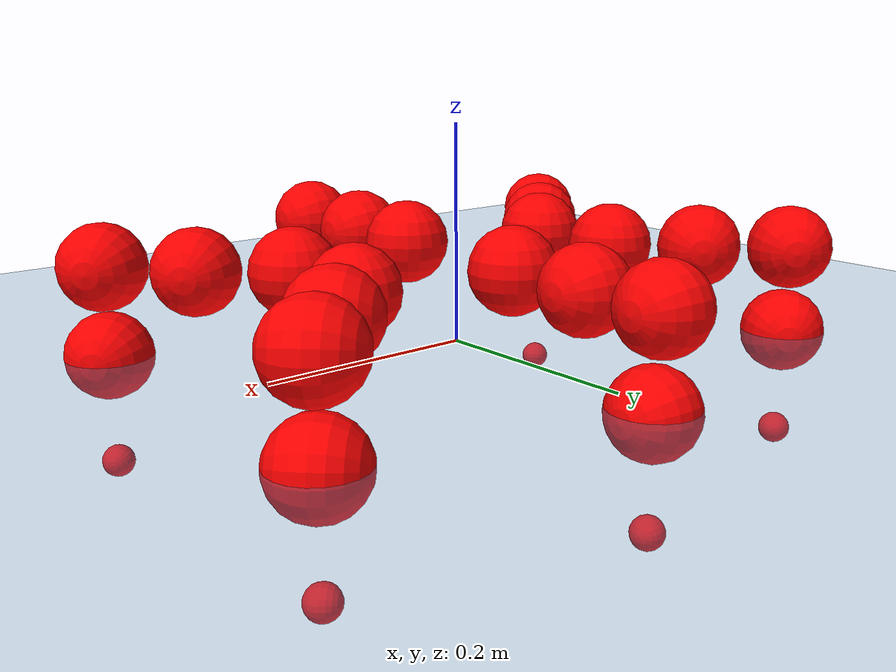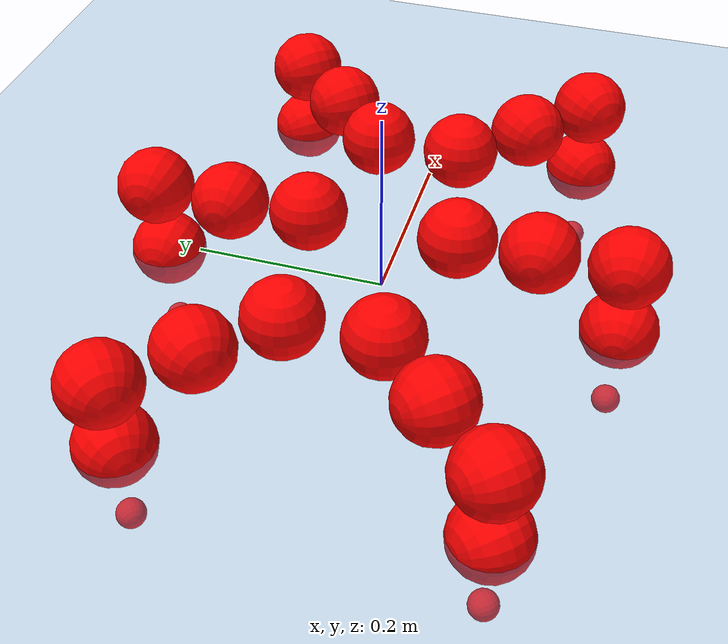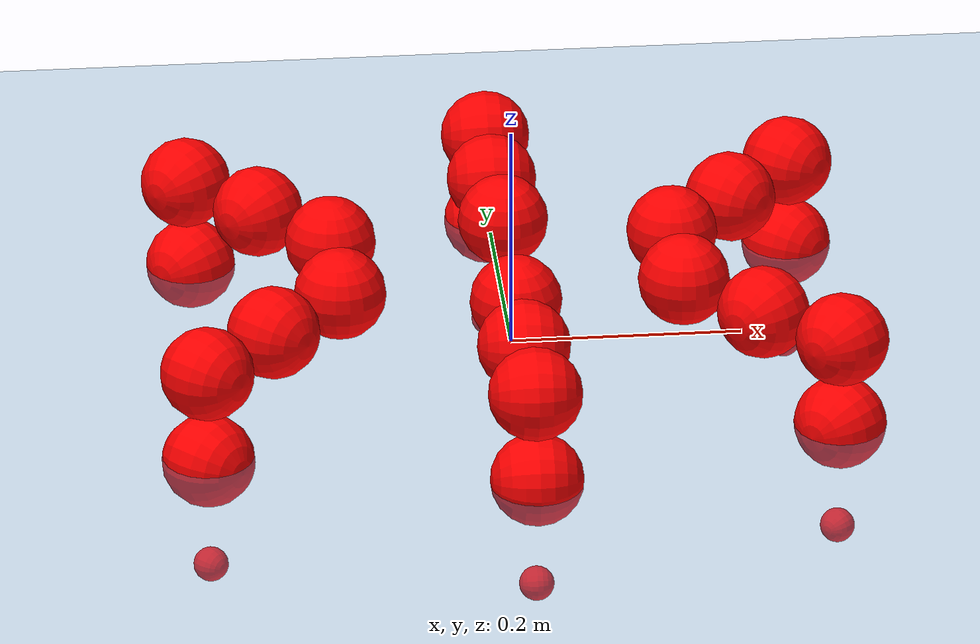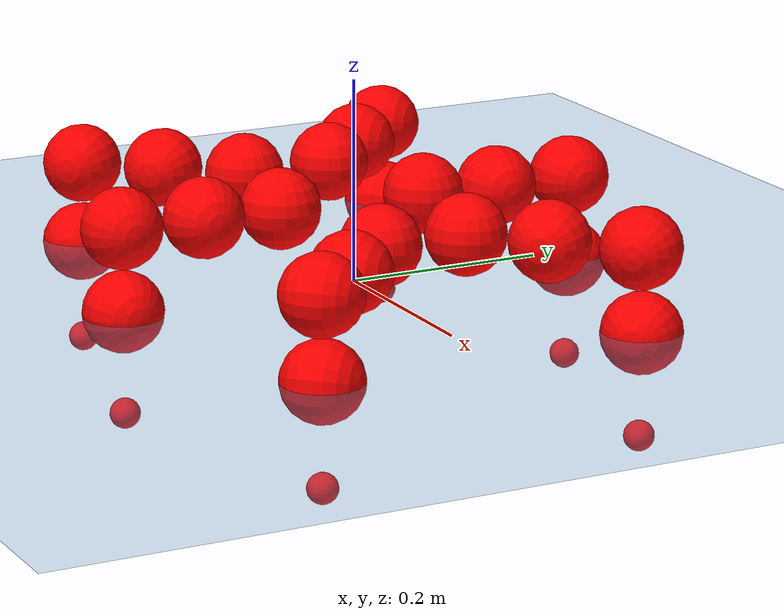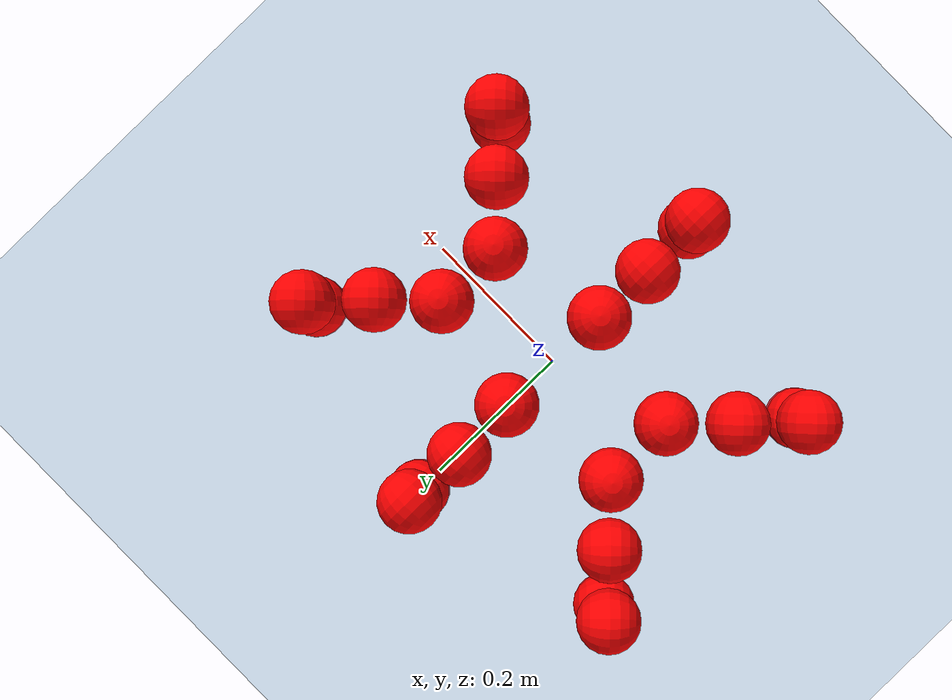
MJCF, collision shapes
<mujoco model="Golem">
  <compiler angle="radian" assetdir="assets" balanceinertia="true" inertiafromgeom="false"/>

  <option timestep="0.005" density="1.2" viscosity="2e-05"/>

  <size nkey="1"/>

  <visual>
    <quality shadowsize="8192"/>
    <map shadowclip="0.5"/>
  </visual>

  <default>
    <default class="/">
      <joint armature="0.01" damping="0.01" frictionloss="0.01"/>
      <geom contype="0" conaffinity="0" group="1" solref="-1000 -80"/>
      <site size="0.01 0.005 0.005" group="5"/>
      <general forcelimited="true" biastype="affine" gainprm="25" biasprm="0 -25 -0.5"/>
      <default class="visual">
        <geom type="mesh" group="2"/>
      </default>
      <default class="collision">
        <geom group="3"/>
      </default>
      <default class="foot">
        <geom size="0.01 0 0" condim="6" group="4" priority="1" solimp="0.015 1 0.01"/>
      </default>
      <default class="reward_collision_sphere">
        <geom group="5" rgba="1 0 0 1"/>
      </default>
    </default>
  </default>

  <asset>
    <texture type="skybox" colorspace="auto" name="//unnamed_texture_0" builtin="gradient" rgb1="0.95 0.95 0.95" rgb2="0.95 0.95 0.95" width="100" height="600"/>
    <texture type="2d" colorspace="auto" name="texplane" builtin="checker" rgb1="0.345 0.575 0.748" rgb2="0.345 0.575 0.748" markrgb="1 1 1" width="512" height="512"/>
    <material name="MatPlane" class="/" texture="texplane" texuniform="true" texrepeat="2 2" specular="0.9"/>
    <mesh name="body" class="/" file="body.stl" scale="0.001 0.001 0.001"/>
    <mesh name="coxa" class="/" file="coxa.stl" scale="0.001 0.001 0.001"/>
    <mesh name="femur" class="/" file="femur.stl" scale="0.001 0.001 0.001"/>
    <mesh name="tibia" class="/" file="tibia.stl" scale="0.001 0.001 0.001"/>
    <mesh name="tarsus" class="/" file="tarsus.stl" scale="0.001 0.001 0.001"/>
  </asset>

  <worldbody>
    <geom name="floor" class="/" size="100 100 0.125" type="plane" group="0" material="MatPlane"/>
    <light name="toplight_shadow" class="/" pos="0 0 5" dir="0.0990148 0.0990148 -0.990148" type="directional" ambient="0.04 0.04 0.04" diffuse="0.55 0.55 0.55" specular="0.12 0.12 0.12"/>
    <light name="toplight_fill" class="/" pos="0 0 5" dir="0.0990148 0.0990148 -0.990148" type="directional" castshadow="false" ambient="0.04 0.04 0.04" diffuse="0.3 0.3 0.3" specular="0.08 0.08 0.08"/>
    <body name="trunk" pos="-0.00198953 -0.000306055 -0.000894657" quat="1 -1.30247e-06 -1.47584e-06 4.74259e-06">
      <inertial pos="-0.000525128 -0.00102951 -0.00185834" quat="0.999908 -0.00332836 0.000855092 0.0131217" mass="3.50471" diaginertia="0.00725423 0.00323224 0.0274621"/>
      <joint name="//unnamed_joint_0" type="free"/>
      <geom name="//unnamed_geom_1" class="/" pos="0 0 0.0781621" quat="1 0 0 0" type="mesh" rgba="0.9 0.9 0.9 1" mesh="body"/>
      <site name="imu" class="/" pos="0.125519 0.0061624 0.108145" size="0.00984192"/>
      <camera name="track" class="/" pos="0 -1.59276 0" quat="0.707107 0.707107 0 0" mode="trackcom"/>
      <camera name="ego_camera" class="/" pos="0.121539 0 0.122128" quat="-0.5 -0.5 0.5 0.5"/>
      <body name="coxa_RR" pos="-0.16749 -0.0653161 0.0797797" quat="0.382481 0.000369481 -0.000164479 -0.923963">
        <inertial pos="0.00247041 0.0028508 0.00300732" quat="0.999987 -0.00238936 0.00284994 -0.00349189" mass="0.190714" diaginertia="0.00714183 0.00332857 0.0265368"/>
        <joint name="coxa_joint_RR" class="/" pos="0 0 0" axis="-0.00360996 0.000638431 -0.999993" range="-3.13108 3.15741" armature="0.00949702" damping="0.00944477" frictionloss="0.00968698"/>
        <geom name="//unnamed_geom_2" class="/" type="mesh" rgba="0.2 0.2 0.2 1" mesh="coxa"/>
        <geom name="//unnamed_geom_3" class="reward_collision_sphere" size="0.0393677" pos="-0.0280475 0 0"/>
        <body name="femur_RR" pos="0.0582906 0.0010846 -0.00115875" quat="0.500806 -0.499437 0.500626 0.499129">
          <inertial pos="0.000471228 0.0026444 0.000921214" quat="0.999994 -0.000812874 -0.0019729 0.00255668" mass="0.184586" diaginertia="0.00700799 0.00312976 0.0267593"/>
          <joint name="femur_joint_RR" class="/" pos="0 0 0" axis="-0.000876387 -0.00273024 -0.999996" stiffness="0.00561428" range="-3.08603 3.08895" armature="0.00982091" damping="0.0283276" frictionloss="0.0112117"/>
          <geom name="//unnamed_geom_4" class="/" type="mesh" rgba="0.9 0.9 0.9 1" mesh="femur"/>
          <geom name="//unnamed_geom_5" class="reward_collision_sphere" size="0.0393677"/>
          <body name="tibia_RR" pos="0.00174131 -0.0861314 0.00311167" quat="0.000463551 0.999999 -0.00126599 0.00049951">
            <inertial pos="-0.0019355 7.0874e-05 -0.00090915" quat="0.999902 0.000776824 -0.00342172 -0.0135389" mass="0.186717" diaginertia="0.00732674 0.00319881 0.0275229"/>
            <joint name="tibia_joint_RR" class="/" pos="0 0 0" axis="-0.00389511 -0.00602563 0.999974" stiffness="0.00448266" range="-3.19419 3.15823" armature="0.00979894" damping="0.00692493" frictionloss="0.00939507"/>
            <geom name="//unnamed_geom_6" class="/" type="mesh" rgba="0.2 0.2 0.2 1" mesh="tibia"/>
            <geom name="//unnamed_geom_7" class="reward_collision_sphere" size="0.0393677"/>
            <body name="tarsus_RR" pos="0.0819278 0.00170075 -0.000680254" quat="0.999999 -0.0011122 -0.000306409 0.000419461">
              <inertial pos="0.0557679 0.00080555 -0.00271068" quat="0.501246 0.500315 0.498975 0.49946" mass="0.191131" diaginertia="0.00706708 0.00324284 0.0269412"/>
              <joint name="tarsus_joint_RR" class="/" pos="0 0 0" axis="-0.0111342 -0.0120341 0.999866" range="-3.14271 3.13462" armature="0.0099754" damping="0.0429311" frictionloss="0.00907399"/>
              <geom name="//unnamed_geom_8" class="/" type="mesh" rgba="0.9 0.9 0.9 1" mesh="tarsus"/>
              <geom name="foot_1" class="foot" size="0.00930233" pos="0.104711 0 0" quat="0 -0.707107 0 0.707107"/>
              <geom name="//unnamed_geom_10" class="reward_collision_sphere" size="0.0393677"/>
              <geom name="//unnamed_geom_11" class="reward_collision_sphere" size="0.0147629" pos="0.100503 0 0"/>
              <site name="foot_1" class="foot" pos="0.104711 0 0" quat="0 -0.707107 0 0.707107" size="0.00984192"/>
            </body>
          </body>
        </body>
      </body>
      <body name="coxa_RM" pos="-0.000551134 -0.104709 0.0827147" quat="0.707255 -0.000792532 -0.000775725 -0.706957">
        <inertial pos="-0.000601744 -0.000781707 -0.00130243" quat="0.999989 -0.00433316 -0.000365824 -0.00148261" mass="0.192501" diaginertia="0.00692266 0.00333056 0.0269508"/>
        <joint name="coxa_joint_RM" class="/" pos="0 0 0" axis="-0.000835932 -0.00346848 -0.999994" range="-3.10656 3.13593" armature="0.0109181" damping="0.0140639" frictionloss="0.0102552"/>
        <geom name="//unnamed_geom_12" class="/" type="mesh" rgba="0.2 0.2 0.2 1" mesh="coxa"/>
        <geom name="//unnamed_geom_13" class="reward_collision_sphere" size="0.0393677" pos="-0.0280475 0 0"/>
        <body name="femur_RM" pos="0.0521305 -0.000665515 0.000622952" quat="0.499685 -0.499481 0.501217 0.499614">
          <inertial pos="-0.00015482 -0.00286462 0.00265678" quat="0.999997 -0.000826064 -0.00184915 -0.00110637" mass="0.199829" diaginertia="0.0069771 0.00320336 0.0269138"/>
          <joint name="femur_joint_RM" class="/" pos="0 0 0" axis="0.000111393 -0.000187991 -1" range="-3.12602 3.0968" armature="0.00936463" damping="0.0220905" frictionloss="0.00979624"/>
          <geom name="//unnamed_geom_14" class="/" type="mesh" rgba="0.9 0.9 0.9 1" mesh="femur"/>
          <geom name="//unnamed_geom_15" class="reward_collision_sphere" size="0.0393677"/>
          <body name="tibia_RM" pos="-0.000659125 -0.0847921 0.00181613" quat="-0.000225973 1 0.000158801 0.000345875">
            <inertial pos="-0.00219529 0.000225039 -0.00197833" quat="0.99996 0.00796707 -0.00188304 -0.00354202" mass="0.192499" diaginertia="0.00725376 0.00318727 0.0275114"/>
            <joint name="tibia_joint_RM" class="/" pos="0 0 0" axis="0.00842383 -0.00696337 0.99994" stiffness="0.00492949" range="-3.14411 3.15073" armature="0.00959918" damping="0.00127595" frictionloss="0.00884037"/>
            <geom name="//unnamed_geom_16" class="/" type="mesh" rgba="0.2 0.2 0.2 1" mesh="tibia"/>
            <geom name="//unnamed_geom_17" class="reward_collision_sphere" size="0.0393677"/>
            <body name="tarsus_RM" pos="0.0807926 0.000665422 -0.00152755" quat="1 0.000147126 -0.000205239 4.72701e-05">
              <inertial pos="0.0571696 -0.000195461 0.000489073" quat="0.501921 0.493751 0.509695 0.494466" mass="0.190126" diaginertia="0.00719764 0.00319457 0.0289489"/>
              <joint name="tarsus_joint_RM" class="/" pos="0 0 0" axis="-0.00621031 0.000164368 0.999981" stiffness="8.66084e-05" range="-3.18299 3.1231" armature="0.0084457" damping="0.00907673" frictionloss="0.0102341"/>
              <geom name="//unnamed_geom_18" class="/" type="mesh" rgba="0.9 0.9 0.9 1" mesh="tarsus"/>
              <geom name="foot_2" class="foot" size="0.0107343" pos="0.104711 0 0" quat="0 -0.707107 0 0.707107"/>
              <geom name="//unnamed_geom_20" class="reward_collision_sphere" size="0.0393677"/>
              <geom name="//unnamed_geom_21" class="reward_collision_sphere" size="0.0147629" pos="0.100503 0 0"/>
              <site name="foot_2" class="foot" pos="0.104711 0 0" quat="0 -0.707107 0 0.707107" size="0.00984192"/>
            </body>
          </body>
        </body>
      </body>
      <body name="coxa_RF" pos="0.16608 -0.0650157 0.0791136" quat="0.923911 0.00025139 0.000147496 -0.382607">
        <inertial pos="0.000424131 0.000180204 0.000176734" quat="0.999987 -0.0013144 0.00220481 0.0043511" mass="0.1935" diaginertia="0.00702092 0.00311807 0.026997"/>
        <joint name="coxa_joint_RF" class="/" pos="0 0 0" axis="0.0178864 0.00278737 -0.999836" stiffness="0.0135578" range="-3.08171 3.13574" armature="0.0083933" damping="0.0229904" frictionloss="0.00995327"/>
        <geom name="//unnamed_geom_22" class="/" type="mesh" rgba="0.2 0.2 0.2 1" mesh="coxa"/>
        <geom name="//unnamed_geom_23" class="reward_collision_sphere" size="0.0393677" pos="-0.0280475 0 0"/>
        <body name="femur_RF" pos="0.0579928 -0.00031656 -0.00164522" quat="0.500127 -0.500206 0.499916 0.49975">
          <inertial pos="-0.0007507 -0.00276492 -0.000380752" quat="0.999985 -6.94537e-05 0.00483765 0.00270709" mass="0.197129" diaginertia="0.00712294 0.00322117 0.0272029"/>
          <joint name="femur_joint_RF" class="/" pos="0 0 0" axis="-0.0034745 -0.000537992 -0.999994" range="-3.13548 3.08399" armature="0.00944721" damping="0.00659353" frictionloss="0.0107224"/>
          <geom name="//unnamed_geom_24" class="/" type="mesh" rgba="0.9 0.9 0.9 1" mesh="femur"/>
          <geom name="//unnamed_geom_25" class="reward_collision_sphere" size="0.0393677"/>
          <body name="tibia_RF" pos="-0.00274314 -0.0834219 0.000427116" quat="-0.00030301 0.999999 -0.00114258 -0.000479309">
            <inertial pos="0.00161252 -0.000216036 0.000841967" quat="0.999967 -0.000382048 0.00432699 0.00685874" mass="0.183707" diaginertia="0.00706596 0.00310435 0.0262826"/>
            <joint name="tibia_joint_RF" class="/" pos="0 0 0" axis="-0.000314782 -0.00219858 0.999998" range="-3.13324 3.14262" armature="0.0100161" damping="0" frictionloss="0.0111228"/>
            <geom name="//unnamed_geom_26" class="/" type="mesh" rgba="0.2 0.2 0.2 1" mesh="tibia"/>
            <geom name="//unnamed_geom_27" class="reward_collision_sphere" size="0.0393677"/>
            <body name="tarsus_RF" pos="0.0800112 -0.000434714 -0.000561646" quat="1 -5.32154e-05 0.000188253 -0.000238031">
              <inertial pos="0.0548701 -0.000239483 -0.000247224" quat="0.493768 0.507463 0.4944 0.504225" mass="0.185706" diaginertia="0.00689764 0.00313336 0.0260554"/>
              <joint name="tarsus_joint_RF" class="/" pos="0 0 0" axis="-0.00643165 0.0107872 0.999921" stiffness="0.00170557" range="-3.13212 3.15473" armature="0.00964537" damping="0.00745376" frictionloss="0.0110857"/>
              <geom name="//unnamed_geom_28" class="/" type="mesh" rgba="0.9 0.9 0.9 1" mesh="tarsus"/>
              <geom name="foot_3" class="foot" size="0.0101079" pos="0.104711 0 0" quat="0 -0.707107 0 0.707107"/>
              <geom name="//unnamed_geom_30" class="reward_collision_sphere" size="0.0393677"/>
              <geom name="//unnamed_geom_31" class="reward_collision_sphere" size="0.0147629" pos="0.100503 0 0"/>
              <site name="foot_3" class="foot" pos="0.104711 0 0" quat="0 -0.707107 0 0.707107" size="0.00984192"/>
            </body>
          </body>
        </body>
      </body>
      <body name="coxa_LR" pos="-0.169688 0.0689795 0.0798046" quat="0.382518 -0.00020144 0.000187078 0.923948">
        <inertial pos="0.000120173 0.000793713 0.00301354" quat="0.999989 0.00443894 0.00114983 -0.0012954" mass="0.18168" diaginertia="0.00696091 0.00318162 0.0270647"/>
        <joint name="coxa_joint_LR" class="/" pos="0 0 0" axis="0.00497266 0.00114651 -0.999987" range="-3.11274 3.14023" armature="0.00847492" damping="0.0191441" frictionloss="0.00946229"/>
        <geom name="//unnamed_geom_32" class="/" type="mesh" rgba="0.2 0.2 0.2 1" mesh="coxa"/>
        <geom name="//unnamed_geom_33" class="reward_collision_sphere" size="0.0393677" pos="-0.0280475 0 0"/>
        <body name="femur_LR" pos="0.0564405 -0.00092923 0.000321798" quat="0.50095 -0.499327 0.4992 0.500521">
          <inertial pos="-0.000483474 -0.000363651 0.00266529" quat="0.999903 0.00597215 -0.0118355 -0.00422077" mass="0.196678" diaginertia="0.00737857 0.00308927 0.0279849"/>
          <joint name="femur_joint_LR" class="/" pos="0 0 0" axis="-0.00331471 0.006931 0.99997" range="-3.15189 3.15304" armature="0.00977276" damping="0.00664796" frictionloss="0.00867925"/>
          <geom name="//unnamed_geom_34" class="/" type="mesh" rgba="0.9 0.9 0.9 1" mesh="femur"/>
          <geom name="//unnamed_geom_35" class="reward_collision_sphere" size="0.0393677"/>
          <body name="tibia_LR" pos="-0.000102711 -0.0849819 0.000145983" quat="-0.00072801 0.999999 0.000634183 0.000455223">
            <inertial pos="0.000757742 -0.00234938 -0.000199417" quat="0.999995 -0.00117794 -0.00265797 -0.00103737" mass="0.190932" diaginertia="0.00702073 0.00321882 0.0261786"/>
            <joint name="tibia_joint_LR" class="/" pos="0 0 0" axis="-5.83625e-05 0.0020736 -0.999998" range="-3.13439 3.17211" armature="0.00840387" damping="0.0137556" frictionloss="0.00852532"/>
            <geom name="//unnamed_geom_36" class="/" type="mesh" rgba="0.2 0.2 0.2 1" mesh="tibia"/>
            <geom name="//unnamed_geom_37" class="reward_collision_sphere" size="0.0393677"/>
            <body name="tarsus_LR" pos="0.0808821 -0.00152445 0.00232787" quat="1 0.000166031 0.000187872 -6.52509e-05">
              <inertial pos="0.0577758 0.000259792 0.00231653" quat="0.50242 0.502065 0.497363 0.498132" mass="0.185512" diaginertia="0.00696205 0.0033236 0.0274616"/>
              <joint name="tarsus_joint_LR" class="/" pos="0 0 0" axis="-0.00060609 -0.000673699 -1" stiffness="0.0138675" range="-3.15703 3.10681" armature="0.00919581" damping="0.0287686" frictionloss="0.0107043"/>
              <geom name="//unnamed_geom_38" class="/" type="mesh" rgba="0.9 0.9 0.9 1" mesh="tarsus"/>
              <geom name="foot_4" class="foot" size="0.0108162" pos="0.104711 0 0" quat="0.707107 0 -0.707107 0"/>
              <geom name="//unnamed_geom_40" class="reward_collision_sphere" size="0.0393677"/>
              <geom name="//unnamed_geom_41" class="reward_collision_sphere" size="0.0147629" pos="0.100503 0 0"/>
              <site name="foot_4" class="foot" pos="0.104711 0 0" quat="0.707107 0 -0.707107 0" size="0.00984192"/>
            </body>
          </body>
        </body>
      </body>
      <body name="coxa_LM" pos="0.00194468 0.103963 0.079989" quat="0.706135 -2.04622e-05 0.000613684 0.708077">
        <inertial pos="0.000463992 -0.000512766 0.00275749" quat="1 0.000503628 0.000101283 -0.000384805" mass="0.189777" diaginertia="0.00730667 0.00317707 0.0268341"/>
        <joint name="coxa_joint_LM" class="/" pos="0 0 0" axis="-0.00908822 0.00578753 -0.999942" range="-3.08931 3.08722" armature="0.0104407" damping="0.0178403" frictionloss="0.0111173"/>
        <geom name="//unnamed_geom_42" class="/" type="mesh" rgba="0.2 0.2 0.2 1" mesh="coxa"/>
        <geom name="//unnamed_geom_43" class="reward_collision_sphere" size="0.0393677" pos="-0.0280475 0 0"/>
        <body name="femur_LM" pos="0.0546655 0.00245125 -0.00235125" quat="0.500034 -0.50004 0.499957 0.499969">
          <inertial pos="-0.00222048 0.00243743 -0.0012762" quat="0.999965 0.00628221 0.00085868 -0.00551916" mass="0.195927" diaginertia="0.00748706 0.00319481 0.028553"/>
          <joint name="femur_joint_LM" class="/" pos="0 0 0" axis="0.00416052 0.0126957 0.999911" stiffness="0.00936931" range="-3.08401 3.14425" armature="0.0100759" damping="0" frictionloss="0.00954458"/>
          <geom name="//unnamed_geom_44" class="/" type="mesh" rgba="0.9 0.9 0.9 1" mesh="femur"/>
          <geom name="//unnamed_geom_45" class="reward_collision_sphere" size="0.0393677"/>
          <body name="tibia_LM" pos="-0.00106695 -0.0819402 -0.00173105" quat="-6.55302e-05 1 -0.000151046 0.000121816">
            <inertial pos="0.00266268 0.000875139 0.00288707" quat="0.999915 0.00454262 -0.00952398 -0.00769615" mass="0.192091" diaginertia="0.00700737 0.00314646 0.0261832"/>
            <joint name="tibia_joint_LM" class="/" pos="0 0 0" axis="-0.0113262 -0.00704214 -0.999911" range="-3.1922 3.17732" armature="0.00959557" damping="0.00162204" frictionloss="0.00860212"/>
            <geom name="//unnamed_geom_46" class="/" type="mesh" rgba="0.2 0.2 0.2 1" mesh="tibia"/>
            <geom name="//unnamed_geom_47" class="reward_collision_sphere" size="0.0393677"/>
            <body name="tarsus_LM" pos="0.0838781 -0.00312006 0.00236945" quat="1 3.9553e-05 0.000179575 0.00010563">
              <inertial pos="0.0540177 0.000709635 1.87703e-05" quat="0.489956 0.508403 0.503239 0.498217" mass="0.191062" diaginertia="0.00746352 0.00323228 0.0271021"/>
              <joint name="tarsus_joint_LM" class="/" pos="0 0 0" axis="-0.00932663 0.0104194 -0.999902" stiffness="0.00141743" range="-3.13489 3.09473" armature="0.0104282" damping="0.00645414" frictionloss="0.00988645"/>
              <geom name="//unnamed_geom_48" class="/" type="mesh" rgba="0.9 0.9 0.9 1" mesh="tarsus"/>
              <geom name="foot_5" class="foot" size="0.0109689" pos="0.104711 0 0" quat="0.707107 0 -0.707107 0"/>
              <geom name="//unnamed_geom_50" class="reward_collision_sphere" size="0.0393677"/>
              <geom name="//unnamed_geom_51" class="reward_collision_sphere" size="0.0147629" pos="0.100503 0 0"/>
              <site name="foot_5" class="foot" pos="0.104711 0 0" quat="0.707107 0 -0.707107 0" size="0.00984192"/>
            </body>
          </body>
        </body>
      </body>
      <body name="coxa_LF" pos="0.165789 0.064874 0.0785457" quat="0.923922 -3.77653e-05 -7.05799e-05 0.382582">
        <inertial pos="0.000675121 0.00206435 0.000162256" quat="1 -0.000228293 -0.000646338 0.000113945" mass="0.187093" diaginertia="0.00692284 0.003184 0.0270188"/>
        <joint name="coxa_joint_LF" class="/" pos="0 0 0" axis="0.000103845 -0.00170993 -0.999999" range="-3.14805 3.08199" armature="0.0109637" damping="0.0104913" frictionloss="0.00987791"/>
        <geom name="//unnamed_geom_52" class="/" type="mesh" rgba="0.2 0.2 0.2 1" mesh="coxa"/>
        <geom name="//unnamed_geom_53" class="reward_collision_sphere" size="0.0393677" pos="-0.0280475 0 0"/>
        <body name="femur_LF" pos="0.0530439 -0.000598903 0.000806466" quat="0.498973 -0.499817 0.500819 0.500388">
          <inertial pos="-0.00110704 0.00262562 -0.00231379" quat="0.999987 -0.00231882 -0.00385157 0.00229276" mass="0.188495" diaginertia="0.00692761 0.00302615 0.0264745"/>
          <joint name="femur_joint_LF" class="/" pos="0 0 0" axis="-0.00526151 -0.00463608 0.999975" stiffness="0.00945394" range="-3.13571 3.12785" armature="0.00911918" damping="0.0011607" frictionloss="0.0106336"/>
          <geom name="//unnamed_geom_54" class="/" type="mesh" rgba="0.9 0.9 0.9 1" mesh="femur"/>
          <geom name="//unnamed_geom_55" class="reward_collision_sphere" size="0.0393677"/>
          <body name="tibia_LF" pos="3.18638e-05 -0.0862123 0.00371466" quat="0.000272205 0.999999 -0.000113994 -0.000978247">
            <inertial pos="0.00254546 0.00298206 0.000806749" quat="0.999997 0.0020481 0.000415799 -0.000978128" mass="0.190977" diaginertia="0.0071266 0.00327495 0.0283616"/>
            <joint name="tibia_joint_LF" class="/" pos="0 0 0" axis="0.000868527 0.00278375 -0.999996" range="-3.16042 3.08448" armature="0.0103705" damping="0.00816291" frictionloss="0.00963581"/>
            <geom name="//unnamed_geom_56" class="/" type="mesh" rgba="0.2 0.2 0.2 1" mesh="tibia"/>
            <geom name="//unnamed_geom_57" class="reward_collision_sphere" size="0.0393677"/>
            <body name="tarsus_LF" pos="0.0814843 0.00210141 -0.00114158" quat="1 -0.000149652 1.16943e-05 0.000397496">
              <inertial pos="0.0577273 -0.000630585 -0.000687854" quat="0.500563 0.50181 0.496141 0.501465" mass="0.184809" diaginertia="0.00679315 0.00312781 0.0262442"/>
              <joint name="tarsus_joint_LF" class="/" pos="0 0 0" axis="0.00076427 0.0038338 -0.999992" range="-3.1189 3.14063" armature="0.00991414" damping="0.00455426" frictionloss="0.0103171"/>
              <geom name="//unnamed_geom_58" class="/" type="mesh" rgba="0.9 0.9 0.9 1" mesh="tarsus"/>
              <geom name="foot_6" class="foot" size="0.00923832" pos="0.104711 0 0" quat="0.707107 0 -0.707107 0"/>
              <geom name="//unnamed_geom_60" class="reward_collision_sphere" size="0.0393677"/>
              <geom name="//unnamed_geom_61" class="reward_collision_sphere" size="0.0147629" pos="0.100503 0 0"/>
              <site name="foot_6" class="foot" pos="0.104711 0 0" quat="0.707107 0 -0.707107 0" size="0.00984192"/>
            </body>
          </body>
        </body>
      </body>
    </body>
  </worldbody>

  <contact>
    <pair class="/" geom1="floor" geom2="foot_1" name="//unnamed_contact_0"/>
    <pair class="/" geom1="floor" geom2="foot_2" name="//unnamed_contact_1"/>
    <pair class="/" geom1="floor" geom2="foot_3" name="//unnamed_contact_2"/>
    <pair class="/" geom1="floor" geom2="foot_4" name="//unnamed_contact_3"/>
    <pair class="/" geom1="floor" geom2="foot_5" name="//unnamed_contact_4"/>
    <pair class="/" geom1="floor" geom2="foot_6" name="//unnamed_contact_5"/>
  </contact>

  <actuator>
    <general name="coxa_joint_RR" class="/" joint="coxa_joint_RR" forcerange="-7.11371 7.11371" gainprm="24.8965" biasprm="0 -24.8965 -0.470176"/>
    <general name="femur_joint_RR" class="/" joint="femur_joint_RR" forcerange="-7.18923 7.18923" gainprm="24.8965" biasprm="0 -24.8965 -0.470176"/>
    <general name="tibia_joint_RR" class="/" joint="tibia_joint_RR" forcerange="-6.92191 6.92191" gainprm="24.8965" biasprm="0 -24.8965 -0.470176"/>
    <general name="tarsus_joint_RR" class="/" joint="tarsus_joint_RR" forcerange="-6.6093 6.6093" gainprm="24.8965" biasprm="0 -24.8965 -0.470176"/>
    <general name="coxa_joint_RM" class="/" joint="coxa_joint_RM" forcerange="-6.54243 6.54243" gainprm="24.8965" biasprm="0 -24.8965 -0.470176"/>
    <general name="femur_joint_RM" class="/" joint="femur_joint_RM" forcerange="-6.73746 6.73746" gainprm="24.8965" biasprm="0 -24.8965 -0.470176"/>
    <general name="tibia_joint_RM" class="/" joint="tibia_joint_RM" forcerange="-7.10702 7.10702" gainprm="24.8965" biasprm="0 -24.8965 -0.470176"/>
    <general name="tarsus_joint_RM" class="/" joint="tarsus_joint_RM" forcerange="-7.89514 7.89514" gainprm="24.8965" biasprm="0 -24.8965 -0.470176"/>
    <general name="coxa_joint_RF" class="/" joint="coxa_joint_RF" forcerange="-6.82151 6.82151" gainprm="24.8965" biasprm="0 -24.8965 -0.470176"/>
    <general name="femur_joint_RF" class="/" joint="femur_joint_RF" forcerange="-6.67241 6.67241" gainprm="24.8965" biasprm="0 -24.8965 -0.470176"/>
    <general name="tibia_joint_RF" class="/" joint="tibia_joint_RF" forcerange="-7.75111 7.75111" gainprm="24.8965" biasprm="0 -24.8965 -0.470176"/>
    <general name="tarsus_joint_RF" class="/" joint="tarsus_joint_RF" forcerange="-7.94333 7.94333" gainprm="24.8965" biasprm="0 -24.8965 -0.470176"/>
    <general name="coxa_joint_LR" class="/" joint="coxa_joint_LR" forcerange="-7.18497 7.18497" gainprm="24.8965" biasprm="0 -24.8965 -0.470176"/>
    <general name="femur_joint_LR" class="/" joint="femur_joint_LR" forcerange="-6.45006 6.45006" gainprm="24.8965" biasprm="0 -24.8965 -0.470176"/>
    <general name="tibia_joint_LR" class="/" joint="tibia_joint_LR" forcerange="-7.15169 7.15169" gainprm="24.8965" biasprm="0 -24.8965 -0.470176"/>
    <general name="tarsus_joint_LR" class="/" joint="tarsus_joint_LR" forcerange="-7.07545 7.07545" gainprm="24.8965" biasprm="0 -24.8965 -0.470176"/>
    <general name="coxa_joint_LM" class="/" joint="coxa_joint_LM" forcerange="-7.93806 7.93806" gainprm="24.8965" biasprm="0 -24.8965 -0.470176"/>
    <general name="femur_joint_LM" class="/" joint="femur_joint_LM" forcerange="-7.15215 7.15215" gainprm="24.8965" biasprm="0 -24.8965 -0.470176"/>
    <general name="tibia_joint_LM" class="/" joint="tibia_joint_LM" forcerange="-7.06841 7.06841" gainprm="24.8965" biasprm="0 -24.8965 -0.470176"/>
    <general name="tarsus_joint_LM" class="/" joint="tarsus_joint_LM" forcerange="-6.43639 6.43639" gainprm="24.8965" biasprm="0 -24.8965 -0.470176"/>
    <general name="coxa_joint_LF" class="/" joint="coxa_joint_LF" forcerange="-7.04833 7.04833" gainprm="24.8965" biasprm="0 -24.8965 -0.470176"/>
    <general name="femur_joint_LF" class="/" joint="femur_joint_LF" forcerange="-7.13429 7.13429" gainprm="24.8965" biasprm="0 -24.8965 -0.470176"/>
    <general name="tibia_joint_LF" class="/" joint="tibia_joint_LF" forcerange="-7.89024 7.89024" gainprm="24.8965" biasprm="0 -24.8965 -0.470176"/>
    <general name="tarsus_joint_LF" class="/" joint="tarsus_joint_LF" forcerange="-7.26116 7.26116" gainprm="24.8965" biasprm="0 -24.8965 -0.470176"/>
  </actuator>

  <sensor>
    <gyro site="imu" name="imu_angular_velocity"/>
    <velocimeter site="imu" name="imu_linear_velocity"/>
    <framelinvel objtype="site" objname="foot_1" name="foot_1_global_linear_velocity"/>
    <framelinvel objtype="site" objname="foot_2" name="foot_2_global_linear_velocity"/>
    <framelinvel objtype="site" objname="foot_3" name="foot_3_global_linear_velocity"/>
    <framelinvel objtype="site" objname="foot_4" name="foot_4_global_linear_velocity"/>
    <framelinvel objtype="site" objname="foot_5" name="foot_5_global_linear_velocity"/>
    <framelinvel objtype="site" objname="foot_6" name="foot_6_global_linear_velocity"/>
  </sensor>

  <keyframe>
    <key name="home" qpos="0 0 0.1457 1 0 0 0 0 0 0 0 0 0 0 0 0 0 0 0 0 0 0 0 0 0 0 0 0 0 0 0"/>
  </keyframe>
</mujoco>
